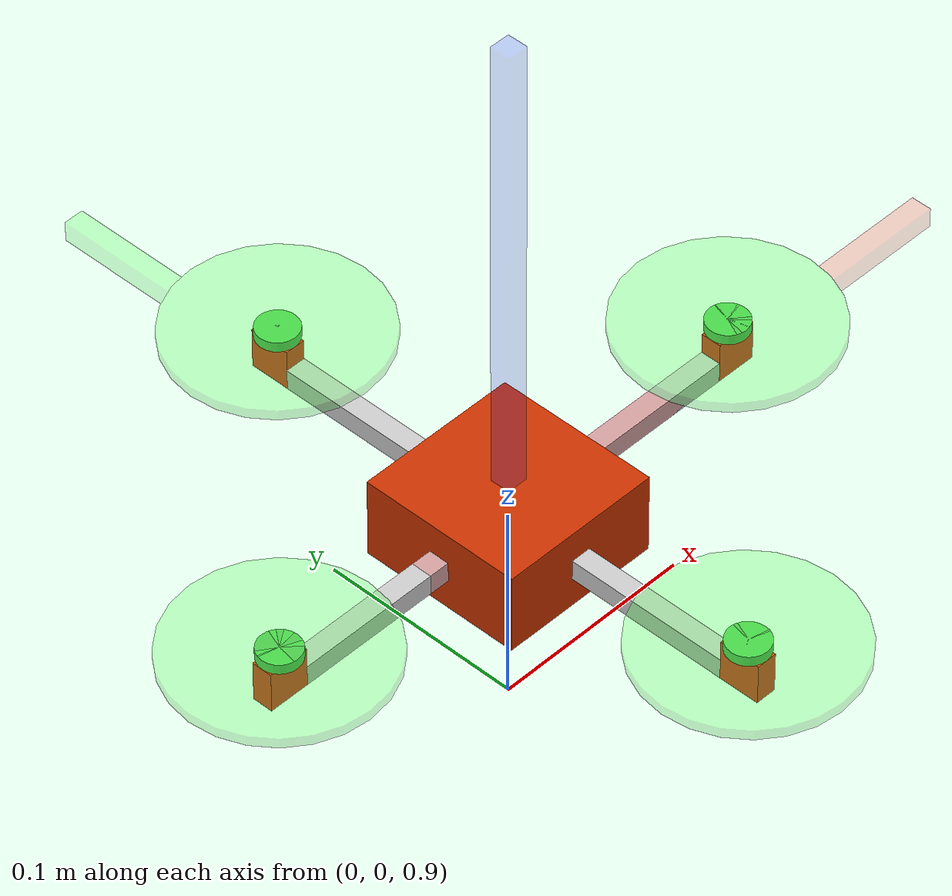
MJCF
<!--
Quadrotor with `+` configuration.
Front: Along body X-axis
-->

<mujoco model="quadrotorplus">
    <compiler angle="degree" inertiafromgeom="true" coordinate="local"/>
    <option	timestep="0.002" gravity="0 0 -9.81" density="1.225" viscosity="1.789e-5" integrator="RK4"/>

    <default>
        <joint armature="1" damping="1" limited="true"/>
        <geom conaffinity="0" condim="3" density="5.0" friction="1 0.5 0.5" margin="0.01" rgba="0.8 0.6 0.4 1"/>
    </default>

    <asset>
        <texture builtin="gradient" height="100" width="100" rgb1="0.6 0.8 1.0" rgb2="1 1 1" type="skybox"/>
        <texture name="texplane" builtin="checker" height="50" width="50" rgb1="0.6 0.8 1.0" rgb2="1 1 1" type="2d"/>
        <material name="MatPlane" texture="texplane" texrepeat="10 10" reflectance="0.2" shininess="0.3" specular="0.3"/>
    </asset>

    <worldbody>
        <light cutoff="100" diffuse="1 1 1" dir="-0 0 -1.3" directional="true" exponent="1" pos="0 0 1.3" specular=".1 .1 .1"/>
        <geom conaffinity="1" condim="3" material="MatPlane" name="floor" pos="0 0 0" rgba="0.8 0.8 0.8 1" size="5 5 0.2" type="plane"/>
        <body name="core" pos="0 0 1" >
            <geom name="core_geom" type="box" pos="0 0 0" quat="1 0 0 0" size=".04 .04 .02" rgba=".8 .2 0 1" mass="1.2"/>
            <joint name="root" type="free" damping="0" armature="0" pos="0 0 0" limited="false"/>
            <geom name="arm_front0" type="box" pos=".08 0 0" size=".04 .005 .005" quat="1 0 0 0" rgba=".8 .8 .8 1" mass=".02"/>
            <geom name="arm_back0" type="box" pos="-.08 0 0" size=".04 .005 .005" quat="0 0 0 1" rgba=".8 .8 .8 1" mass=".02"/>
            <geom name="arm_left0" type="box" pos="0 .08 0" size=".04 .005 .005" quat=".707 0 0 .707" rgba=".8 .8 .8 1" mass=".02"/>
            <geom name="arm_right0" type="box" pos="0 -.08 0" size=".04 .005 .005" quat=".707 0 0 -.707" rgba=".8 .8 .8 1" mass=".02"/>

            <body name="arm_front1" pos=".12 0 0">
                <geom type="box" pos=".01 0 .005" size=".01 .005 .01" quat="1 0 0 0" rgba="1 .1 0 1" mass=".02"/>
                <body name="thruster0" pos="0.01 0 0.015">
                    <geom type="cylinder" pos="0 0 .0025" size=".05 .0025" quat="1 0 0 0" rgba=".3 1 .3 0.3" mass=".02"/>
                    <site name="motor0" type="cylinder" pos="0 0 .0025" size=".01 .0025" quat="1 0 0 0" rgba=".3 .8 .3 1"/>
                </body>
            </body>

            <body name="arm_back1" pos="-.12 0 0">
                <geom type="box" pos="-.01 0 .005" size=".01 .005 .01" quat="0 0 0 1" rgba="1 .1 0 1" mass=".02"/>
                <body name="thruster1" pos="-0.01 0 .015">
                    <geom type="cylinder" pos="0 0 .0025" size=".05 .0025" quat="1 0 0 0" rgba=".3 1 .3 0.3" mass=".02"/>
                    <site name="motor1" type="cylinder" pos="0 0 .0025" size=".01 .0025" quat="1 0 0 0" rgba=".3 .8 .3 1"/>
                </body>
            </body>

            <body name="arm_left1" pos="0 .12 0">
                <geom type="box" pos="0 .01 .005" size=".01 .005 .01" quat=".7071068 0 0 .7071068" rgba="1 .1 0 1" mass=".02"/>
                <body name="thruster2" pos="0 0.01 0.015">
                    <geom type="cylinder" pos="0 0 .0025" size=".05 .0025" quat="1 0 0 0" rgba=".3 1 .3 0.3" mass=".02"/>
                    <site name="motor2" type="cylinder" pos="0 0 .0025" size=".01 0.0025" quat="1 0 0 0" rgba=".3 .8 .3 1"/>
                </body>
            </body>

            <body name="arm_right1" pos="0 -.12 0">
                <geom type="box" pos="0 -.01 .005" size=".01 .005 .01" quat=".7071068 0 0 -.7071068" rgba="1 .1 0 1" mass=".02"/>
                <body name="thruster3" pos="0 -0.01 .015">
                    <geom type="cylinder" pos="0 0 .0025" size=".05 .0025" quat="1 0 0 0" rgba=".3 1 .3 0.3" mass=".02"/>
                    <site type="cylinder" pos="0 0 .0025" size=".01 .0025" quat="1 0 0 0" rgba=".3 .8 .3 1" name="motor3"/>
                </body>
            </body>

            <site name="x_axis" type="box" pos=".1 .0 .0" size=".15 .005 .005" quat="1 0 0 0" rgba="1 0 0 0.2"/>
            <site name="y_axis" type="box" pos=".0 .1 .0" size=".15 .005 .005" quat=".707 0 0 .707" rgba="0 1 0 0.2"/>
            <site name="z_axis" type="box" pos=".0 .0 .1" size=".15 .005 .005" quat="-.707 0 .707 0" rgba="0 0 1 0.2"/>
        </body>
    </worldbody>

    <actuator>
        <motor name="Motor0" ctrllimited="true" ctrlrange="0 5" gear="0  0. 1. 0. 0. -0.016" site="motor0"/>
        <motor name="Motor1" ctrllimited="true" ctrlrange="0 5" gear="0  0. 1. 0. 0. -0.016" site="motor1"/>
        <motor name="Motor2" ctrllimited="true" ctrlrange="0 5" gear="0  0. 1. 0. 0.  0.016" site="motor2"/>
        <motor name="Motor3" ctrllimited="true" ctrlrange="0 5" gear="0  0. 1. 0. 0.  0.016" site="motor3"/>
    </actuator>
</mujoco>
